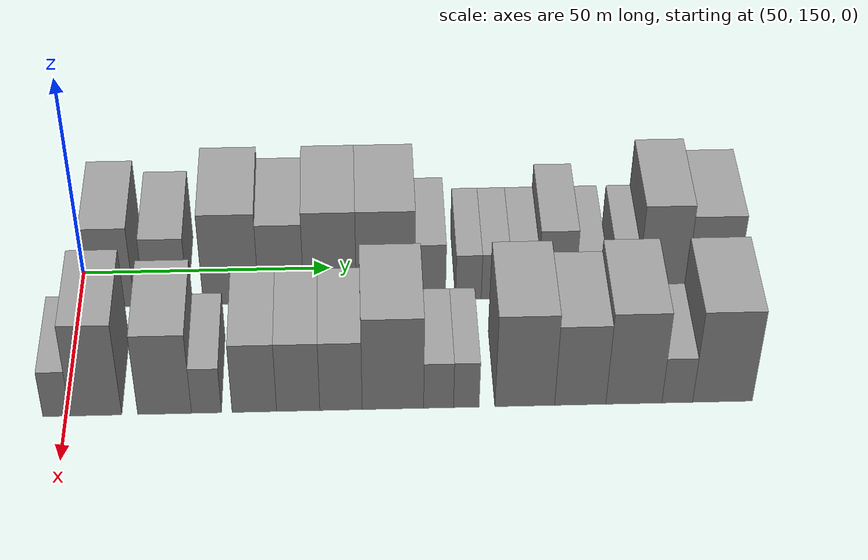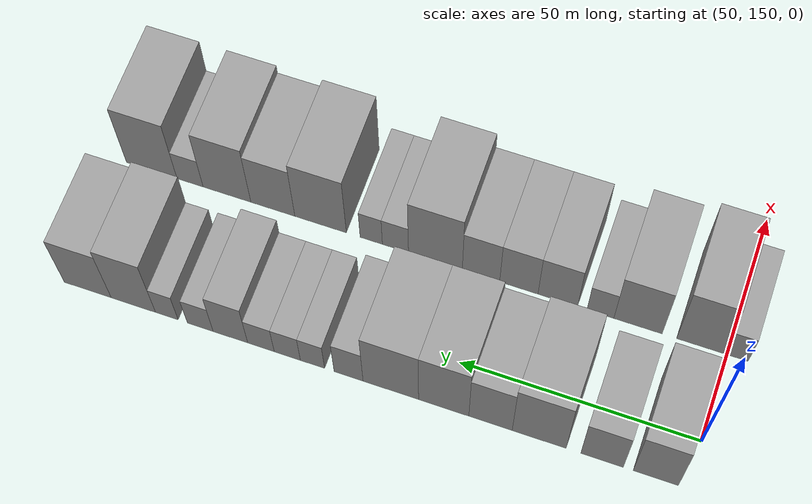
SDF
<sdf version="1.6">
 <world name="default">
  <model name="building_44">
   <static>1</static>
   <pose>50.0000 156.4740 0 0.000000 0.000000 0.000000</pose>
   <link name="link">
    <pose>0 0 10.50 0 0 0</pose>
    <collision name="collision"><geometry><box><size>20.0000 9.1314 21.0000</size></box></geometry></collision>
    <visual name="visual">
     <cast_shadows>0</cast_shadows>
     <geometry><box><size>20.0000 9.1314 21.0000</size></box></geometry>
     <material>
      <script>
       <uri>model://grey_wall/materials/scripts</uri>
       <uri>model://grey_wall/materials/textures</uri>
       <name>vrc/grey_wall</name>
      </script>
     </material>
    </visual>
   </link>
  </model>
  <model name="building_45">
   <static>1</static>
   <pose>50.0000 167.3634 0 0.000000 0.000000 0.000000</pose>
   <link name="link">
    <pose>0 0 9.00 0 0 0</pose>
    <collision name="collision"><geometry><box><size>20.0000 8.6474 18.0000</size></box></geometry></collision>
    <visual name="visual">
     <cast_shadows>0</cast_shadows>
     <geometry><box><size>20.0000 8.6474 18.0000</size></box></geometry>
     <material>
      <script>
       <uri>model://grey_wall/materials/scripts</uri>
       <uri>model://grey_wall/materials/textures</uri>
       <name>vrc/grey_wall</name>
      </script>
     </material>
    </visual>
   </link>
  </model>
  <model name="building_46">
   <static>1</static>
   <pose>50.0000 180.2306 0 0.000000 0.000000 0.000000</pose>
   <link name="link">
    <pose>0 0 12.00 0 0 0</pose>
    <collision name="collision"><geometry><box><size>20.0000 11.0870 24.0000</size></box></geometry></collision>
    <visual name="visual">
     <cast_shadows>0</cast_shadows>
     <geometry><box><size>20.0000 11.0870 24.0000</size></box></geometry>
     <material>
      <script>
       <uri>model://grey_wall/materials/scripts</uri>
       <uri>model://grey_wall/materials/textures</uri>
       <name>vrc/grey_wall</name>
      </script>
     </material>
    </visual>
   </link>
  </model>
  <model name="building_47">
   <static>1</static>
   <pose>50.0000 190.2564 0 0.000000 0.000000 0.000000</pose>
   <link name="link">
    <pose>0 0 10.50 0 0 0</pose>
    <collision name="collision"><geometry><box><size>20.0000 8.9645 21.0000</size></box></geometry></collision>
    <visual name="visual">
     <cast_shadows>0</cast_shadows>
     <geometry><box><size>20.0000 8.9645 21.0000</size></box></geometry>
     <material>
      <script>
       <uri>model://grey_wall/materials/scripts</uri>
       <uri>model://grey_wall/materials/textures</uri>
       <name>vrc/grey_wall</name>
      </script>
     </material>
    </visual>
   </link>
  </model>
  <model name="building_48">
   <static>1</static>
   <pose>50.0000 199.9749 0 0.000000 0.000000 0.000000</pose>
   <link name="link">
    <pose>0 0 12.00 0 0 0</pose>
    <collision name="collision"><geometry><box><size>20.0000 10.4727 24.0000</size></box></geometry></collision>
    <visual name="visual">
     <cast_shadows>0</cast_shadows>
     <geometry><box><size>20.0000 10.4727 24.0000</size></box></geometry>
     <material>
      <script>
       <uri>model://grey_wall/materials/scripts</uri>
       <uri>model://grey_wall/materials/textures</uri>
       <name>vrc/grey_wall</name>
      </script>
     </material>
    </visual>
   </link>
  </model>
  <model name="building_49">
   <static>1</static>
   <pose>50.0000 211.0418 0 0.000000 0.000000 0.000000</pose>
   <link name="link">
    <pose>0 0 12.00 0 0 0</pose>
    <collision name="collision"><geometry><box><size>20.0000 11.6610 24.0000</size></box></geometry></collision>
    <visual name="visual">
     <cast_shadows>0</cast_shadows>
     <geometry><box><size>20.0000 11.6610 24.0000</size></box></geometry>
     <material>
      <script>
       <uri>model://grey_wall/materials/scripts</uri>
       <uri>model://grey_wall/materials/textures</uri>
       <name>vrc/grey_wall</name>
      </script>
     </material>
    </visual>
   </link>
  </model>
  <model name="building_50">
   <static>1</static>
   <pose>50.0000 219.9304 0 0.000000 0.000000 0.000000</pose>
   <link name="link">
    <pose>0 0 7.50 0 0 0</pose>
    <collision name="collision"><geometry><box><size>20.0000 6.1162 15.0000</size></box></geometry></collision>
    <visual name="visual">
     <cast_shadows>0</cast_shadows>
     <geometry><box><size>20.0000 6.1162 15.0000</size></box></geometry>
     <material>
      <script>
       <uri>model://grey_wall/materials/scripts</uri>
       <uri>model://grey_wall/materials/textures</uri>
       <name>vrc/grey_wall</name>
      </script>
     </material>
    </visual>
   </link>
  </model>
  <model name="building_51">
   <static>1</static>
   <pose>50.0000 227.5612 0 0.000000 0.000000 0.000000</pose>
   <link name="link">
    <pose>0 0 6.00 0 0 0</pose>
    <collision name="collision"><geometry><box><size>20.0000 5.1453 12.0000</size></box></geometry></collision>
    <visual name="visual">
     <cast_shadows>0</cast_shadows>
     <geometry><box><size>20.0000 5.1453 12.0000</size></box></geometry>
     <material>
      <script>
       <uri>model://grey_wall/materials/scripts</uri>
       <uri>model://grey_wall/materials/textures</uri>
       <name>vrc/grey_wall</name>
      </script>
     </material>
    </visual>
   </link>
  </model>
  <model name="building_52">
   <static>1</static>
   <pose>50.0000 232.9234 0 0.000000 0.000000 0.000000</pose>
   <link name="link">
    <pose>0 0 6.00 0 0 0</pose>
    <collision name="collision"><geometry><box><size>20.0000 5.5791 12.0000</size></box></geometry></collision>
    <visual name="visual">
     <cast_shadows>0</cast_shadows>
     <geometry><box><size>20.0000 5.5791 12.0000</size></box></geometry>
     <material>
      <script>
       <uri>model://grey_wall/materials/scripts</uri>
       <uri>model://grey_wall/materials/textures</uri>
       <name>vrc/grey_wall</name>
      </script>
     </material>
    </visual>
   </link>
  </model>
  <model name="building_53">
   <static>1</static>
   <pose>50.0000 238.5586 0 0.000000 0.000000 0.000000</pose>
   <link name="link">
    <pose>0 0 6.00 0 0 0</pose>
    <collision name="collision"><geometry><box><size>20.0000 5.6915 12.0000</size></box></geometry></collision>
    <visual name="visual">
     <cast_shadows>0</cast_shadows>
     <geometry><box><size>20.0000 5.6915 12.0000</size></box></geometry>
     <material>
      <script>
       <uri>model://grey_wall/materials/scripts</uri>
       <uri>model://grey_wall/materials/textures</uri>
       <name>vrc/grey_wall</name>
      </script>
     </material>
    </visual>
   </link>
  </model>
  <model name="building_54">
   <static>1</static>
   <pose>50.0000 245.1342 0 0.000000 0.000000 0.000000</pose>
   <link name="link">
    <pose>0 0 9.00 0 0 0</pose>
    <collision name="collision"><geometry><box><size>20.0000 7.4597 18.0000</size></box></geometry></collision>
    <visual name="visual">
     <cast_shadows>0</cast_shadows>
     <geometry><box><size>20.0000 7.4597 18.0000</size></box></geometry>
     <material>
      <script>
       <uri>model://grey_wall/materials/scripts</uri>
       <uri>model://grey_wall/materials/textures</uri>
       <name>vrc/grey_wall</name>
      </script>
     </material>
    </visual>
   </link>
  </model>
  <model name="building_55">
   <static>1</static>
   <pose>50.0000 251.6517 0 0.000000 0.000000 0.000000</pose>
   <link name="link">
    <pose>0 0 6.00 0 0 0</pose>
    <collision name="collision"><geometry><box><size>20.0000 5.5754 12.0000</size></box></geometry></collision>
    <visual name="visual">
     <cast_shadows>0</cast_shadows>
     <geometry><box><size>20.0000 5.5754 12.0000</size></box></geometry>
     <material>
      <script>
       <uri>model://grey_wall/materials/scripts</uri>
       <uri>model://grey_wall/materials/textures</uri>
       <name>vrc/grey_wall</name>
      </script>
     </material>
    </visual>
   </link>
  </model>
  <model name="building_56">
   <static>1</static>
   <pose>50.0000 258.8911 0 0.000000 0.000000 0.000000</pose>
   <link name="link">
    <pose>0 0 6.00 0 0 0</pose>
    <collision name="collision"><geometry><box><size>20.0000 4.9034 12.0000</size></box></geometry></collision>
    <visual name="visual">
     <cast_shadows>0</cast_shadows>
     <geometry><box><size>20.0000 4.9034 12.0000</size></box></geometry>
     <material>
      <script>
       <uri>model://grey_wall/materials/scripts</uri>
       <uri>model://grey_wall/materials/textures</uri>
       <name>vrc/grey_wall</name>
      </script>
     </material>
    </visual>
   </link>
  </model>
  <model name="building_57">
   <static>1</static>
   <pose>50.0000 266.1980 0 0.000000 0.000000 0.000000</pose>
   <link name="link">
    <pose>0 0 12.00 0 0 0</pose>
    <collision name="collision"><geometry><box><size>20.0000 9.7103 24.0000</size></box></geometry></collision>
    <visual name="visual">
     <cast_shadows>0</cast_shadows>
     <geometry><box><size>20.0000 9.7103 24.0000</size></box></geometry>
     <material>
      <script>
       <uri>model://grey_wall/materials/scripts</uri>
       <uri>model://grey_wall/materials/textures</uri>
       <name>vrc/grey_wall</name>
      </script>
     </material>
    </visual>
   </link>
  </model>
  <model name="building_58">
   <static>1</static>
   <pose>50.0000 276.2072 0 0.000000 0.000000 0.000000</pose>
   <link name="link">
    <pose>0 0 10.50 0 0 0</pose>
    <collision name="collision"><geometry><box><size>20.0000 10.3082 21.0000</size></box></geometry></collision>
    <visual name="visual">
     <cast_shadows>0</cast_shadows>
     <geometry><box><size>20.0000 10.3082 21.0000</size></box></geometry>
     <material>
      <script>
       <uri>model://grey_wall/materials/scripts</uri>
       <uri>model://grey_wall/materials/textures</uri>
       <name>vrc/grey_wall</name>
      </script>
     </material>
    </visual>
   </link>
  </model>
  <model name="building_106">
   <static>1</static>
   <pose>79.0000 148.2861 0 0.000000 0.000000 0.000000</pose>
   <link name="link">
    <pose>0 0 6.00 0 0 0</pose>
    <collision name="collision"><geometry><box><size>20.0000 5.1314 12.0000</size></box></geometry></collision>
    <visual name="visual">
     <cast_shadows>0</cast_shadows>
     <geometry><box><size>20.0000 5.1314 12.0000</size></box></geometry>
     <material>
      <script>
       <uri>model://grey_wall/materials/scripts</uri>
       <uri>model://grey_wall/materials/textures</uri>
       <name>vrc/grey_wall</name>
      </script>
     </material>
    </visual>
   </link>
  </model>
  <model name="building_107">
   <static>1</static>
   <pose>79.0000 155.6988 0 0.000000 0.000000 0.000000</pose>
   <link name="link">
    <pose>0 0 12.00 0 0 0</pose>
    <collision name="collision"><geometry><box><size>20.0000 9.6939 24.0000</size></box></geometry></collision>
    <visual name="visual">
     <cast_shadows>0</cast_shadows>
     <geometry><box><size>20.0000 9.6939 24.0000</size></box></geometry>
     <material>
      <script>
       <uri>model://grey_wall/materials/scripts</uri>
       <uri>model://grey_wall/materials/textures</uri>
       <name>vrc/grey_wall</name>
      </script>
     </material>
    </visual>
   </link>
  </model>
  <model name="building_108">
   <static>1</static>
   <pose>79.0000 168.6106 0 0.000000 0.000000 0.000000</pose>
   <link name="link">
    <pose>0 0 10.50 0 0 0</pose>
    <collision name="collision"><geometry><box><size>20.0000 10.1297 21.0000</size></box></geometry></collision>
    <visual name="visual">
     <cast_shadows>0</cast_shadows>
     <geometry><box><size>20.0000 10.1297 21.0000</size></box></geometry>
     <material>
      <script>
       <uri>model://grey_wall/materials/scripts</uri>
       <uri>model://grey_wall/materials/textures</uri>
       <name>vrc/grey_wall</name>
      </script>
     </material>
    </visual>
   </link>
  </model>
  <model name="building_109">
   <static>1</static>
   <pose>79.0000 176.4988 0 0.000000 0.000000 0.000000</pose>
   <link name="link">
    <pose>0 0 6.00 0 0 0</pose>
    <collision name="collision"><geometry><box><size>20.0000 5.6468 12.0000</size></box></geometry></collision>
    <visual name="visual">
     <cast_shadows>0</cast_shadows>
     <geometry><box><size>20.0000 5.6468 12.0000</size></box></geometry>
     <material>
      <script>
       <uri>model://grey_wall/materials/scripts</uri>
       <uri>model://grey_wall/materials/textures</uri>
       <name>vrc/grey_wall</name>
      </script>
     </material>
    </visual>
   </link>
  </model>
  <model name="building_110">
   <static>1</static>
   <pose>79.0000 185.5167 0 0.000000 0.000000 0.000000</pose>
   <link name="link">
    <pose>0 0 9.00 0 0 0</pose>
    <collision name="collision"><geometry><box><size>20.0000 8.3890 18.0000</size></box></geometry></collision>
    <visual name="visual">
     <cast_shadows>0</cast_shadows>
     <geometry><box><size>20.0000 8.3890 18.0000</size></box></geometry>
     <material>
      <script>
       <uri>model://grey_wall/materials/scripts</uri>
       <uri>model://grey_wall/materials/textures</uri>
       <name>vrc/grey_wall</name>
      </script>
     </material>
    </visual>
   </link>
  </model>
  <model name="building_111">
   <static>1</static>
   <pose>79.0000 193.7927 0 0.000000 0.000000 0.000000</pose>
   <link name="link">
    <pose>0 0 9.00 0 0 0</pose>
    <collision name="collision"><geometry><box><size>20.0000 8.1629 18.0000</size></box></geometry></collision>
    <visual name="visual">
     <cast_shadows>0</cast_shadows>
     <geometry><box><size>20.0000 8.1629 18.0000</size></box></geometry>
     <material>
      <script>
       <uri>model://grey_wall/materials/scripts</uri>
       <uri>model://grey_wall/materials/textures</uri>
       <name>vrc/grey_wall</name>
      </script>
     </material>
    </visual>
   </link>
  </model>
  <model name="building_112">
   <static>1</static>
   <pose>79.0000 201.8754 0 0.000000 0.000000 0.000000</pose>
   <link name="link">
    <pose>0 0 9.00 0 0 0</pose>
    <collision name="collision"><geometry><box><size>20.0000 8.0024 18.0000</size></box></geometry></collision>
    <visual name="visual">
     <cast_shadows>0</cast_shadows>
     <geometry><box><size>20.0000 8.0024 18.0000</size></box></geometry>
     <material>
      <script>
       <uri>model://grey_wall/materials/scripts</uri>
       <uri>model://grey_wall/materials/textures</uri>
       <name>vrc/grey_wall</name>
      </script>
     </material>
    </visual>
   </link>
  </model>
  <model name="building_113">
   <static>1</static>
   <pose>79.0000 211.6847 0 0.000000 0.000000 0.000000</pose>
   <link name="link">
    <pose>0 0 12.00 0 0 0</pose>
    <collision name="collision"><geometry><box><size>20.0000 11.6162 24.0000</size></box></geometry></collision>
    <visual name="visual">
     <cast_shadows>0</cast_shadows>
     <geometry><box><size>20.0000 11.6162 24.0000</size></box></geometry>
     <material>
      <script>
       <uri>model://grey_wall/materials/scripts</uri>
       <uri>model://grey_wall/materials/textures</uri>
       <name>vrc/grey_wall</name>
      </script>
     </material>
    </visual>
   </link>
  </model>
  <model name="building_114">
   <static>1</static>
   <pose>79.0000 220.3244 0 0.000000 0.000000 0.000000</pose>
   <link name="link">
    <pose>0 0 6.00 0 0 0</pose>
    <collision name="collision"><geometry><box><size>20.0000 5.6634 12.0000</size></box></geometry></collision>
    <visual name="visual">
     <cast_shadows>0</cast_shadows>
     <geometry><box><size>20.0000 5.6634 12.0000</size></box></geometry>
     <material>
      <script>
       <uri>model://grey_wall/materials/scripts</uri>
       <uri>model://grey_wall/materials/textures</uri>
       <name>vrc/grey_wall</name>
      </script>
     </material>
    </visual>
   </link>
  </model>
  <model name="building_115">
   <static>1</static>
   <pose>79.0000 225.5826 0 0.000000 0.000000 0.000000</pose>
   <link name="link">
    <pose>0 0 6.00 0 0 0</pose>
    <collision name="collision"><geometry><box><size>20.0000 4.8529 12.0000</size></box></geometry></collision>
    <visual name="visual">
     <cast_shadows>0</cast_shadows>
     <geometry><box><size>20.0000 4.8529 12.0000</size></box></geometry>
     <material>
      <script>
       <uri>model://grey_wall/materials/scripts</uri>
       <uri>model://grey_wall/materials/textures</uri>
       <name>vrc/grey_wall</name>
      </script>
     </material>
    </visual>
   </link>
  </model>
  <model name="building_116">
   <static>1</static>
   <pose>79.0000 236.6717 0 0.000000 0.000000 0.000000</pose>
   <link name="link">
    <pose>0 0 12.00 0 0 0</pose>
    <collision name="collision"><geometry><box><size>20.0000 11.3252 24.0000</size></box></geometry></collision>
    <visual name="visual">
     <cast_shadows>0</cast_shadows>
     <geometry><box><size>20.0000 11.3252 24.0000</size></box></geometry>
     <material>
      <script>
       <uri>model://grey_wall/materials/scripts</uri>
       <uri>model://grey_wall/materials/textures</uri>
       <name>vrc/grey_wall</name>
      </script>
     </material>
    </visual>
   </link>
  </model>
  <model name="building_117">
   <static>1</static>
   <pose>79.0000 247.1990 0 0.000000 0.000000 0.000000</pose>
   <link name="link">
    <pose>0 0 10.50 0 0 0</pose>
    <collision name="collision"><geometry><box><size>20.0000 9.7294 21.0000</size></box></geometry></collision>
    <visual name="visual">
     <cast_shadows>0</cast_shadows>
     <geometry><box><size>20.0000 9.7294 21.0000</size></box></geometry>
     <material>
      <script>
       <uri>model://grey_wall/materials/scripts</uri>
       <uri>model://grey_wall/materials/textures</uri>
       <name>vrc/grey_wall</name>
      </script>
     </material>
    </visual>
   </link>
  </model>
  <model name="building_118">
   <static>1</static>
   <pose>79.0000 257.3883 0 0.000000 0.000000 0.000000</pose>
   <link name="link">
    <pose>0 0 12.00 0 0 0</pose>
    <collision name="collision"><geometry><box><size>20.0000 10.6492 24.0000</size></box></geometry></collision>
    <visual name="visual">
     <cast_shadows>0</cast_shadows>
     <geometry><box><size>20.0000 10.6492 24.0000</size></box></geometry>
     <material>
      <script>
       <uri>model://grey_wall/materials/scripts</uri>
       <uri>model://grey_wall/materials/textures</uri>
       <name>vrc/grey_wall</name>
      </script>
     </material>
    </visual>
   </link>
  </model>
  <model name="building_119">
   <static>1</static>
   <pose>79.0000 265.6427 0 0.000000 0.000000 0.000000</pose>
   <link name="link">
    <pose>0 0 6.00 0 0 0</pose>
    <collision name="collision"><geometry><box><size>20.0000 5.8596 12.0000</size></box></geometry></collision>
    <visual name="visual">
     <cast_shadows>0</cast_shadows>
     <geometry><box><size>20.0000 5.8596 12.0000</size></box></geometry>
     <material>
      <script>
       <uri>model://grey_wall/materials/scripts</uri>
       <uri>model://grey_wall/materials/textures</uri>
       <name>vrc/grey_wall</name>
      </script>
     </material>
    </visual>
   </link>
  </model>
  <model name="building_120">
   <static>1</static>
   <pose>79.0000 274.2634 0 0.000000 0.000000 0.000000</pose>
   <link name="link">
    <pose>0 0 12.00 0 0 0</pose>
    <collision name="collision"><geometry><box><size>20.0000 11.3816 24.0000</size></box></geometry></collision>
    <visual name="visual">
     <cast_shadows>0</cast_shadows>
     <geometry><box><size>20.0000 11.3816 24.0000</size></box></geometry>
     <material>
      <script>
       <uri>model://grey_wall/materials/scripts</uri>
       <uri>model://grey_wall/materials/textures</uri>
       <name>vrc/grey_wall</name>
      </script>
     </material>
    </visual>
   </link>
  </model>
 </world>
</sdf>
